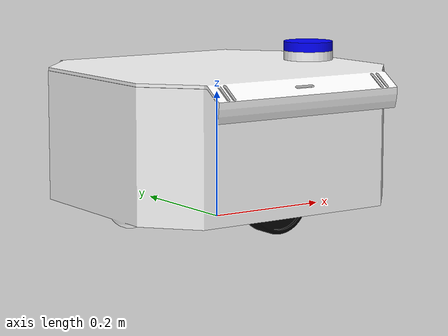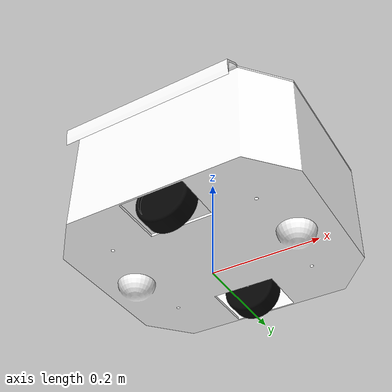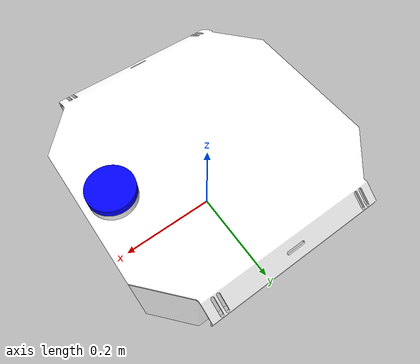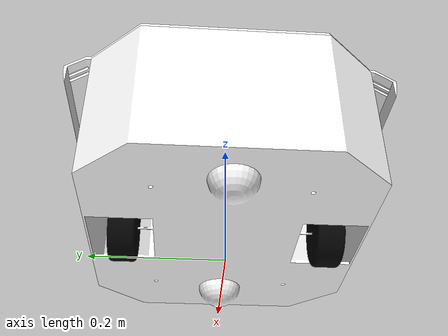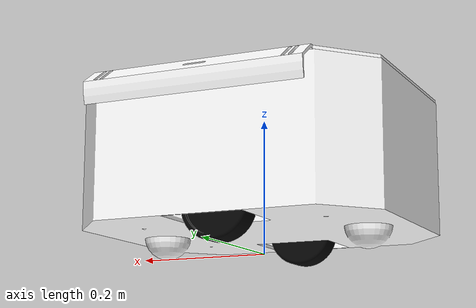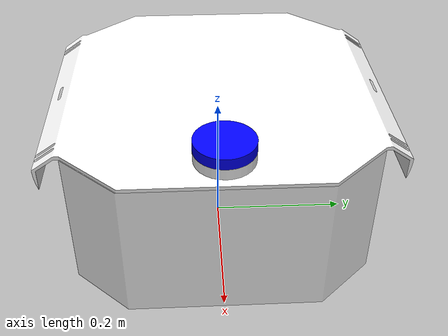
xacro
<?xml version="1.0" ?>
<robot name="BAYMAX_AGV" xmlns:xacro="http://www.ros.org/wiki/xacro">

<xacro:include filename="$(find BAYMAX_AGV_description)/urdf/materials.xacro" />
<xacro:include filename="$(find BAYMAX_AGV_description)/urdf/BAYMAX_AGV.trans" />
<xacro:include filename="$(find BAYMAX_AGV_description)/urdf/BAYMAX_AGV.gazebo" />
<link name="base_link">
  <inertial>
    <origin xyz="0.0163526526709143 -0.0002742223115800173 0.10038863858032329" rpy="0 0 0"/>
    <mass value="5.831665737577658"/>
    <inertia ixx="0.129984" iyy="0.18936" izz="0.249978" ixy="-1.7e-05" iyz="5.3e-05" ixz="-0.012862"/>
  </inertial>
  <visual>
    <origin xyz="0 0 0" rpy="0 0 0"/>
    <geometry>
      <mesh filename="package://BAYMAX_AGV_description/meshes/base_link.stl" scale="0.001 0.001 0.001"/>
    </geometry>
    <material name="white"/>
  </visual>
  <collision>
    <origin xyz="0 0 0" rpy="0 0 0"/>
    <geometry>
      <mesh filename="package://BAYMAX_AGV_description/meshes/base_link.stl" scale="0.001 0.001 0.001"/>
    </geometry>
  </collision>
</link>

<link name="left_wheel_1">
  <inertial>
    <origin xyz="-8.048879387819683e-18 0.018242355565773027 0.0" rpy="0 0 0"/>
    <mass value="2.217555098328873"/>
    <inertia ixx="0.001654" iyy="0.00282" izz="0.001654" ixy="-0.0" iyz="-0.0" ixz="-0.0"/>
  </inertial>
  <visual>
    <origin xyz="-0.0 -0.132 -0.05" rpy="0 0 0"/>
    <geometry>
      <mesh filename="package://BAYMAX_AGV_description/meshes/left_wheel_1.stl" scale="0.001 0.001 0.001"/>
    </geometry>
    <material name="black"/>
  </visual>
  <collision>
    <origin xyz="-0.0 -0.132 -0.05" rpy="0 0 0"/>
    <geometry>
      <mesh filename="package://BAYMAX_AGV_description/meshes/left_wheel_1.stl" scale="0.001 0.001 0.001"/>
    </geometry>
  </collision>
</link>

<link name="right_wheel_1">
  <inertial>
    <origin xyz="-1.6097758775639362e-17 -0.01824235556577311 -1.3877787807814457e-17" rpy="0 0 0"/>
    <mass value="2.2175550983288734"/>
    <inertia ixx="0.001654" iyy="0.00282" izz="0.001654" ixy="-0.0" iyz="-0.0" ixz="-0.0"/>
  </inertial>
  <visual>
    <origin xyz="-0.0 0.132 -0.05" rpy="0 0 0"/>
    <geometry>
      <mesh filename="package://BAYMAX_AGV_description/meshes/right_wheel_1.stl" scale="0.001 0.001 0.001"/>
    </geometry>
    <material name="black"/>
  </visual>
  <collision>
    <origin xyz="-0.0 0.132 -0.05" rpy="0 0 0"/>
    <geometry>
      <mesh filename="package://BAYMAX_AGV_description/meshes/right_wheel_1.stl" scale="0.001 0.001 0.001"/>
    </geometry>
  </collision>
</link>

<link name="lidar_1">
  <inertial>
    <origin xyz="5.551115123125783e-17 7.539092578283892e-18 0.007500000000000007" rpy="0 0 0"/>
    <mass value="0.5918760559363169"/>
    <inertia ixx="0.000248" iyy="0.000248" izz="0.000474" ixy="0.0" iyz="-0.0" ixz="0.0"/>
  </inertial>
  <visual>
    <origin xyz="-0.18 -0.0 -0.2551" rpy="0 0 0"/>
    <geometry>
      <mesh filename="package://BAYMAX_AGV_description/meshes/lidar_1.stl" scale="0.001 0.001 0.001"/>
    </geometry>
    <material name="blue"/>
  </visual>
  <collision>
    <origin xyz="-0.18 -0.0 -0.2551" rpy="0 0 0"/>
    <geometry>
      <mesh filename="package://BAYMAX_AGV_description/meshes/lidar_1.stl" scale="0.001 0.001 0.001"/>
    </geometry>
  </collision>
</link>

<link name="baymax_lid_1">
  <inertial>
    <origin xyz="-0.22999067320842267 -0.1298544519260583 -0.00012315934079434876" rpy="0 0 0"/>
    <mass value="8.339122245125255"/>
    <inertia ixx="0.160958" iyy="0.125301" izz="0.285161" ixy="2e-06" iyz="0.0" ixz="0.0"/>
  </inertial>
  <visual>
    <origin xyz="-0.231783 -0.130625 -0.2351" rpy="0 0 0"/>
    <geometry>
      <mesh filename="package://BAYMAX_AGV_description/meshes/baymax_lid_1.stl" scale="0.001 0.001 0.001"/>
    </geometry>
    <material name="white"/>
  </visual>
  <collision>
    <origin xyz="-0.231783 -0.130625 -0.2351" rpy="0 0 0"/>
    <geometry>
      <mesh filename="package://BAYMAX_AGV_description/meshes/baymax_lid_1.stl" scale="0.001 0.001 0.001"/>
    </geometry>
  </collision>
</link>

<joint name="Revolute7" type="continuous">
  <origin xyz="0.0 0.132 0.05" rpy="0 0 0"/>
  <parent link="base_link"/>
  <child link="left_wheel_1"/>
  <axis xyz="0.0 1.0 0.0"/>
</joint>

<joint name="Revolute8" type="continuous">
  <origin xyz="0.0 -0.132 0.05" rpy="0 0 0"/>
  <parent link="base_link"/>
  <child link="right_wheel_1"/>
  <axis xyz="0.0 1.0 0.0"/>
</joint>

<joint name="Rigid9" type="fixed">
  <origin xyz="0.18 0.0 0.2551" rpy="0 0 0"/>
  <parent link="base_link"/>
  <child link="lidar_1"/>
</joint>

<joint name="Rigid11" type="fixed">
  <origin xyz="0.231783 0.130625 0.2351" rpy="0 0 0"/>
  <parent link="base_link"/>
  <child link="baymax_lid_1"/>
</joint>

</robot>

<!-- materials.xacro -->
<robot name="BAYMAX_AGV" xmlns:xacro="http://www.ros.org/wiki/xacro" >

<material name="silver">
  <color rgba="0.700 0.700 0.700 1.000"/>
</material>

<material name="black">
  <color rgba="0.020 0.020 0.020 1.000"/>
</material>

<material name="white">
  <color rgba="1.000 1.000 1.000 1.000"/>
</material>

<material name="blue">
  <color rgba="00.00 00.00 01.00 1.000"/>
</material>

</robot>
